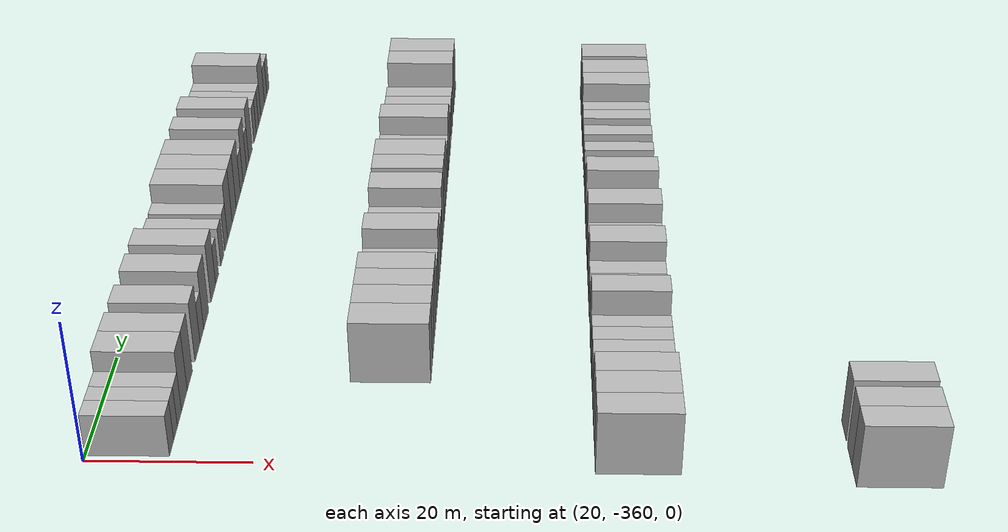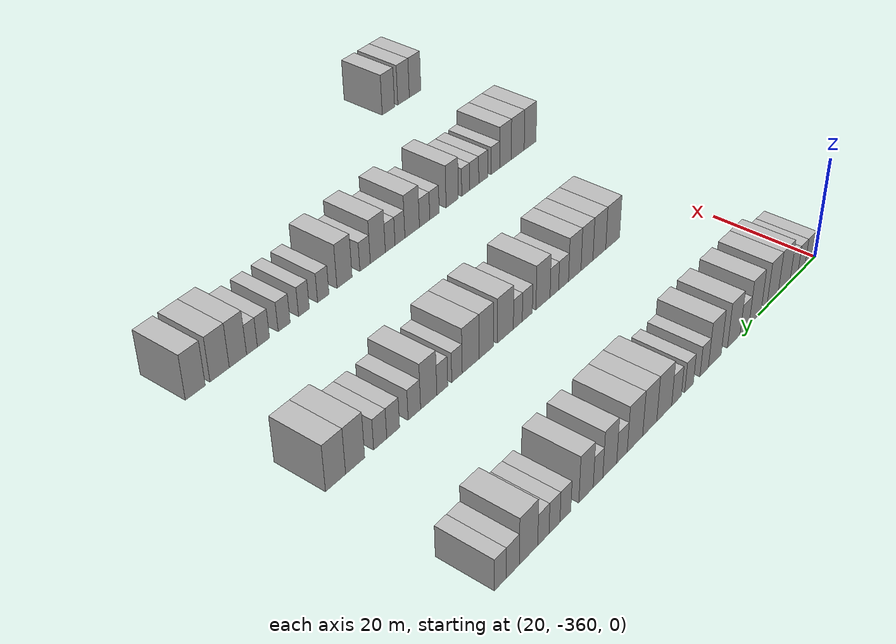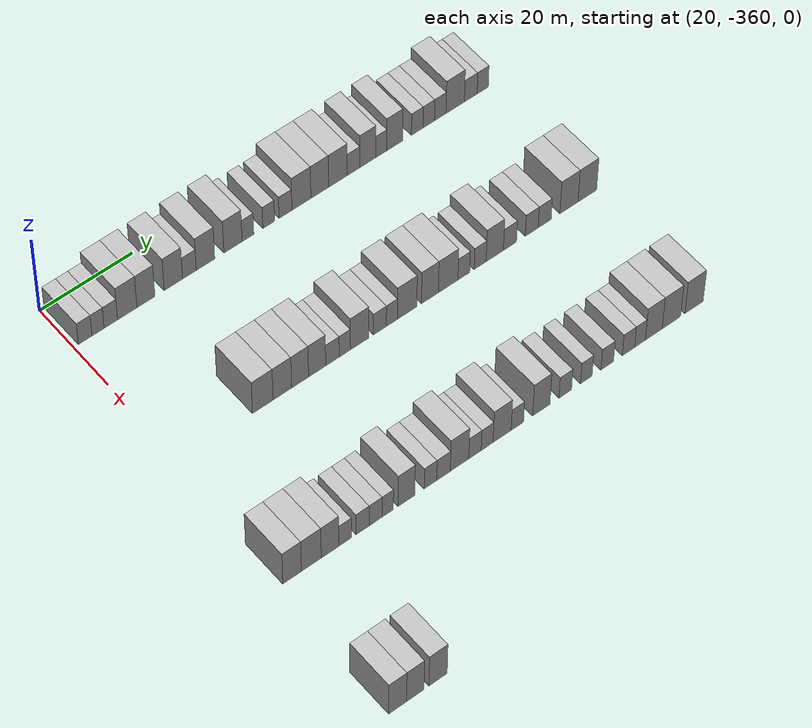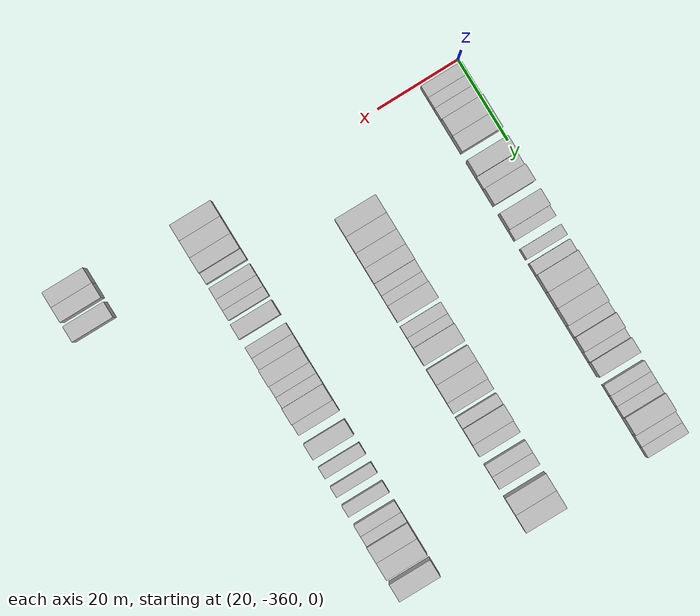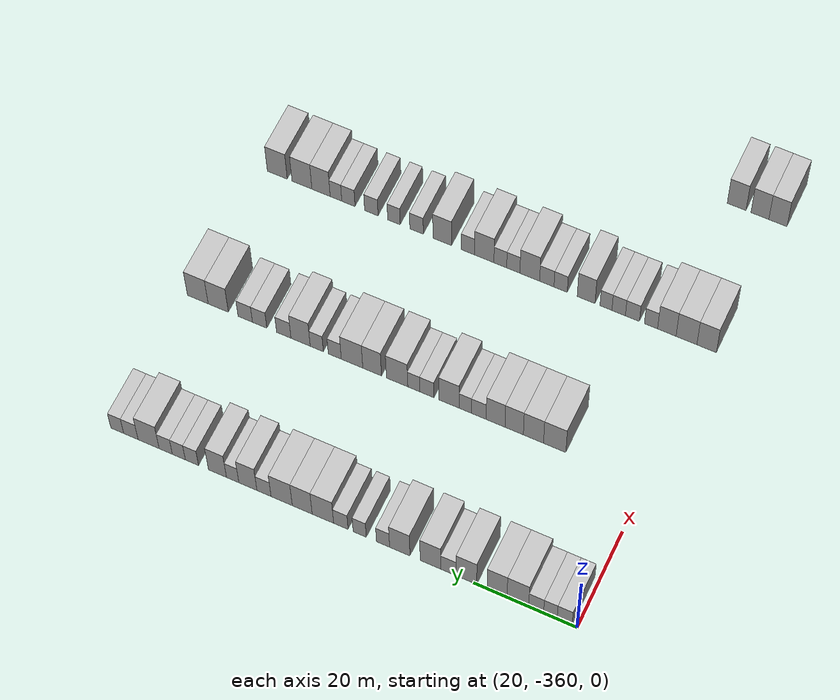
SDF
<sdf version="1.6">
 <world name="default">
  <model name="building_25">
   <static>1</static>
   <pose>25.0000 -357.5511 0 0.000000 0.000000 0.000000</pose>
   <link name="link">
    <pose>0 0 3.00 0 0 0</pose>
    <collision name="collision"><geometry><box><size>10.0000 2.8805 6.0000</size></box></geometry></collision>
    <visual name="visual">
     <cast_shadows>0</cast_shadows>
     <geometry><box><size>10.0000 2.8805 6.0000</size></box></geometry>
     <material>
      <script>
       <uri>model://HANNAS_wall/materials/scripts</uri>
       <uri>model://HANNAS_wall/materials/textures</uri>
       <name>vrc/HANNAS_wall</name>
      </script>
     </material>
    </visual>
   </link>
  </model>
  <model name="building_26">
   <static>1</static>
   <pose>25.0000 -354.8168 0 0.000000 0.000000 0.000000</pose>
   <link name="link">
    <pose>0 0 3.00 0 0 0</pose>
    <collision name="collision"><geometry><box><size>10.0000 2.5881 6.0000</size></box></geometry></collision>
    <visual name="visual">
     <cast_shadows>0</cast_shadows>
     <geometry><box><size>10.0000 2.5881 6.0000</size></box></geometry>
     <material>
      <script>
       <uri>model://HANNAS_wall/materials/scripts</uri>
       <uri>model://HANNAS_wall/materials/textures</uri>
       <name>vrc/HANNAS_wall</name>
      </script>
     </material>
    </visual>
   </link>
  </model>
  <model name="building_27">
   <static>1</static>
   <pose>25.0000 -352.0899 0 0.000000 0.000000 0.000000</pose>
   <link name="link">
    <pose>0 0 3.00 0 0 0</pose>
    <collision name="collision"><geometry><box><size>10.0000 2.8656 6.0000</size></box></geometry></collision>
    <visual name="visual">
     <cast_shadows>0</cast_shadows>
     <geometry><box><size>10.0000 2.8656 6.0000</size></box></geometry>
     <material>
      <script>
       <uri>model://HANNAS_wall/materials/scripts</uri>
       <uri>model://HANNAS_wall/materials/textures</uri>
       <name>vrc/HANNAS_wall</name>
      </script>
     </material>
    </visual>
   </link>
  </model>
  <model name="building_28">
   <static>1</static>
   <pose>25.0000 -348.5748 0 0.000000 0.000000 0.000000</pose>
   <link name="link">
    <pose>0 0 4.50 0 0 0</pose>
    <collision name="collision"><geometry><box><size>10.0000 4.1646 9.0000</size></box></geometry></collision>
    <visual name="visual">
     <cast_shadows>0</cast_shadows>
     <geometry><box><size>10.0000 4.1646 9.0000</size></box></geometry>
     <material>
      <script>
       <uri>model://HANNAS_wall/materials/scripts</uri>
       <uri>model://HANNAS_wall/materials/textures</uri>
       <name>vrc/HANNAS_wall</name>
      </script>
     </material>
    </visual>
   </link>
  </model>
  <model name="building_29">
   <static>1</static>
   <pose>25.0000 -344.5619 0 0.000000 0.000000 0.000000</pose>
   <link name="link">
    <pose>0 0 4.50 0 0 0</pose>
    <collision name="collision"><geometry><box><size>10.0000 3.8612 9.0000</size></box></geometry></collision>
    <visual name="visual">
     <cast_shadows>0</cast_shadows>
     <geometry><box><size>10.0000 3.8612 9.0000</size></box></geometry>
     <material>
      <script>
       <uri>model://HANNAS_wall/materials/scripts</uri>
       <uri>model://HANNAS_wall/materials/textures</uri>
       <name>vrc/HANNAS_wall</name>
      </script>
     </material>
    </visual>
   </link>
  </model>
  <model name="building_30">
   <static>1</static>
   <pose>25.0000 -338.6396 0 0.000000 0.000000 0.000000</pose>
   <link name="link">
    <pose>0 0 4.50 0 0 0</pose>
    <collision name="collision"><geometry><box><size>10.0000 3.9833 9.0000</size></box></geometry></collision>
    <visual name="visual">
     <cast_shadows>0</cast_shadows>
     <geometry><box><size>10.0000 3.9833 9.0000</size></box></geometry>
     <material>
      <script>
       <uri>model://HANNAS_wall/materials/scripts</uri>
       <uri>model://HANNAS_wall/materials/textures</uri>
       <name>vrc/HANNAS_wall</name>
      </script>
     </material>
    </visual>
   </link>
  </model>
  <model name="building_31">
   <static>1</static>
   <pose>25.0000 -335.1630 0 0.000000 0.000000 0.000000</pose>
   <link name="link">
    <pose>0 0 3.00 0 0 0</pose>
    <collision name="collision"><geometry><box><size>10.0000 2.9698 6.0000</size></box></geometry></collision>
    <visual name="visual">
     <cast_shadows>0</cast_shadows>
     <geometry><box><size>10.0000 2.9698 6.0000</size></box></geometry>
     <material>
      <script>
       <uri>model://HANNAS_wall/materials/scripts</uri>
       <uri>model://HANNAS_wall/materials/textures</uri>
       <name>vrc/HANNAS_wall</name>
      </script>
     </material>
    </visual>
   </link>
  </model>
  <model name="building_32">
   <static>1</static>
   <pose>25.0000 -331.6582 0 0.000000 0.000000 0.000000</pose>
   <link name="link">
    <pose>0 0 4.50 0 0 0</pose>
    <collision name="collision"><geometry><box><size>10.0000 4.0399 9.0000</size></box></geometry></collision>
    <visual name="visual">
     <cast_shadows>0</cast_shadows>
     <geometry><box><size>10.0000 4.0399 9.0000</size></box></geometry>
     <material>
      <script>
       <uri>model://HANNAS_wall/materials/scripts</uri>
       <uri>model://HANNAS_wall/materials/textures</uri>
       <name>vrc/HANNAS_wall</name>
      </script>
     </material>
    </visual>
   </link>
  </model>
  <model name="building_33">
   <static>1</static>
   <pose>25.0000 -325.6373 0 0.000000 0.000000 0.000000</pose>
   <link name="link">
    <pose>0 0 4.50 0 0 0</pose>
    <collision name="collision"><geometry><box><size>10.0000 4.0019 9.0000</size></box></geometry></collision>
    <visual name="visual">
     <cast_shadows>0</cast_shadows>
     <geometry><box><size>10.0000 4.0019 9.0000</size></box></geometry>
     <material>
      <script>
       <uri>model://HANNAS_wall/materials/scripts</uri>
       <uri>model://HANNAS_wall/materials/textures</uri>
       <name>vrc/HANNAS_wall</name>
      </script>
     </material>
    </visual>
   </link>
  </model>
  <model name="building_34">
   <static>1</static>
   <pose>25.0000 -322.3451 0 0.000000 0.000000 0.000000</pose>
   <link name="link">
    <pose>0 0 3.00 0 0 0</pose>
    <collision name="collision"><geometry><box><size>10.0000 2.5824 6.0000</size></box></geometry></collision>
    <visual name="visual">
     <cast_shadows>0</cast_shadows>
     <geometry><box><size>10.0000 2.5824 6.0000</size></box></geometry>
     <material>
      <script>
       <uri>model://HANNAS_wall/materials/scripts</uri>
       <uri>model://HANNAS_wall/materials/textures</uri>
       <name>vrc/HANNAS_wall</name>
      </script>
     </material>
    </visual>
   </link>
  </model>
  <model name="building_35">
   <static>1</static>
   <pose>25.0000 -317.7563 0 0.000000 0.000000 0.000000</pose>
   <link name="link">
    <pose>0 0 3.00 0 0 0</pose>
    <collision name="collision"><geometry><box><size>10.0000 2.5953 6.0000</size></box></geometry></collision>
    <visual name="visual">
     <cast_shadows>0</cast_shadows>
     <geometry><box><size>10.0000 2.5953 6.0000</size></box></geometry>
     <material>
      <script>
       <uri>model://HANNAS_wall/materials/scripts</uri>
       <uri>model://HANNAS_wall/materials/textures</uri>
       <name>vrc/HANNAS_wall</name>
      </script>
     </material>
    </visual>
   </link>
  </model>
  <model name="building_36">
   <static>1</static>
   <pose>25.0000 -314.0332 0 0.000000 0.000000 0.000000</pose>
   <link name="link">
    <pose>0 0 3.00 0 0 0</pose>
    <collision name="collision"><geometry><box><size>10.0000 2.8508 6.0000</size></box></geometry></collision>
    <visual name="visual">
     <cast_shadows>0</cast_shadows>
     <geometry><box><size>10.0000 2.8508 6.0000</size></box></geometry>
     <material>
      <script>
       <uri>model://HANNAS_wall/materials/scripts</uri>
       <uri>model://HANNAS_wall/materials/textures</uri>
       <name>vrc/HANNAS_wall</name>
      </script>
     </material>
    </visual>
   </link>
  </model>
  <model name="building_37">
   <static>1</static>
   <pose>25.0000 -310.4805 0 0.000000 0.000000 0.000000</pose>
   <link name="link">
    <pose>0 0 4.50 0 0 0</pose>
    <collision name="collision"><geometry><box><size>10.0000 4.2546 9.0000</size></box></geometry></collision>
    <visual name="visual">
     <cast_shadows>0</cast_shadows>
     <geometry><box><size>10.0000 4.2546 9.0000</size></box></geometry>
     <material>
      <script>
       <uri>model://HANNAS_wall/materials/scripts</uri>
       <uri>model://HANNAS_wall/materials/textures</uri>
       <name>vrc/HANNAS_wall</name>
      </script>
     </material>
    </visual>
   </link>
  </model>
  <model name="building_38">
   <static>1</static>
   <pose>25.0000 -306.3795 0 0.000000 0.000000 0.000000</pose>
   <link name="link">
    <pose>0 0 4.50 0 0 0</pose>
    <collision name="collision"><geometry><box><size>10.0000 3.9473 9.0000</size></box></geometry></collision>
    <visual name="visual">
     <cast_shadows>0</cast_shadows>
     <geometry><box><size>10.0000 3.9473 9.0000</size></box></geometry>
     <material>
      <script>
       <uri>model://HANNAS_wall/materials/scripts</uri>
       <uri>model://HANNAS_wall/materials/textures</uri>
       <name>vrc/HANNAS_wall</name>
      </script>
     </material>
    </visual>
   </link>
  </model>
  <model name="building_39">
   <static>1</static>
   <pose>25.0000 -302.2905 0 0.000000 0.000000 0.000000</pose>
   <link name="link">
    <pose>0 0 4.50 0 0 0</pose>
    <collision name="collision"><geometry><box><size>10.0000 4.2308 9.0000</size></box></geometry></collision>
    <visual name="visual">
     <cast_shadows>0</cast_shadows>
     <geometry><box><size>10.0000 4.2308 9.0000</size></box></geometry>
     <material>
      <script>
       <uri>model://HANNAS_wall/materials/scripts</uri>
       <uri>model://HANNAS_wall/materials/textures</uri>
       <name>vrc/HANNAS_wall</name>
      </script>
     </material>
    </visual>
   </link>
  </model>
  <model name="building_40">
   <static>1</static>
   <pose>25.0000 -298.7629 0 0.000000 0.000000 0.000000</pose>
   <link name="link">
    <pose>0 0 3.00 0 0 0</pose>
    <collision name="collision"><geometry><box><size>10.0000 2.8245 6.0000</size></box></geometry></collision>
    <visual name="visual">
     <cast_shadows>0</cast_shadows>
     <geometry><box><size>10.0000 2.8245 6.0000</size></box></geometry>
     <material>
      <script>
       <uri>model://HANNAS_wall/materials/scripts</uri>
       <uri>model://HANNAS_wall/materials/textures</uri>
       <name>vrc/HANNAS_wall</name>
      </script>
     </material>
    </visual>
   </link>
  </model>
  <model name="building_41">
   <static>1</static>
   <pose>25.0000 -295.5331 0 0.000000 0.000000 0.000000</pose>
   <link name="link">
    <pose>0 0 4.50 0 0 0</pose>
    <collision name="collision"><geometry><box><size>10.0000 3.6350 9.0000</size></box></geometry></collision>
    <visual name="visual">
     <cast_shadows>0</cast_shadows>
     <geometry><box><size>10.0000 3.6350 9.0000</size></box></geometry>
     <material>
      <script>
       <uri>model://HANNAS_wall/materials/scripts</uri>
       <uri>model://HANNAS_wall/materials/textures</uri>
       <name>vrc/HANNAS_wall</name>
      </script>
     </material>
    </visual>
   </link>
  </model>
  <model name="building_42">
   <static>1</static>
   <pose>25.0000 -292.4759 0 0.000000 0.000000 0.000000</pose>
   <link name="link">
    <pose>0 0 3.00 0 0 0</pose>
    <collision name="collision"><geometry><box><size>10.0000 2.4794 6.0000</size></box></geometry></collision>
    <visual name="visual">
     <cast_shadows>0</cast_shadows>
     <geometry><box><size>10.0000 2.4794 6.0000</size></box></geometry>
     <material>
      <script>
       <uri>model://HANNAS_wall/materials/scripts</uri>
       <uri>model://HANNAS_wall/materials/textures</uri>
       <name>vrc/HANNAS_wall</name>
      </script>
     </material>
    </visual>
   </link>
  </model>
  <model name="building_43">
   <static>1</static>
   <pose>25.0000 -289.4240 0 0.000000 0.000000 0.000000</pose>
   <link name="link">
    <pose>0 0 4.50 0 0 0</pose>
    <collision name="collision"><geometry><box><size>10.0000 3.6244 9.0000</size></box></geometry></collision>
    <visual name="visual">
     <cast_shadows>0</cast_shadows>
     <geometry><box><size>10.0000 3.6244 9.0000</size></box></geometry>
     <material>
      <script>
       <uri>model://HANNAS_wall/materials/scripts</uri>
       <uri>model://HANNAS_wall/materials/textures</uri>
       <name>vrc/HANNAS_wall</name>
      </script>
     </material>
    </visual>
   </link>
  </model>
  <model name="building_44">
   <static>1</static>
   <pose>25.0000 -284.2788 0 0.000000 0.000000 0.000000</pose>
   <link name="link">
    <pose>0 0 3.00 0 0 0</pose>
    <collision name="collision"><geometry><box><size>10.0000 2.6661 6.0000</size></box></geometry></collision>
    <visual name="visual">
     <cast_shadows>0</cast_shadows>
     <geometry><box><size>10.0000 2.6661 6.0000</size></box></geometry>
     <material>
      <script>
       <uri>model://HANNAS_wall/materials/scripts</uri>
       <uri>model://HANNAS_wall/materials/textures</uri>
       <name>vrc/HANNAS_wall</name>
      </script>
     </material>
    </visual>
   </link>
  </model>
  <model name="building_45">
   <static>1</static>
   <pose>25.0000 -281.6269 0 0.000000 0.000000 0.000000</pose>
   <link name="link">
    <pose>0 0 3.00 0 0 0</pose>
    <collision name="collision"><geometry><box><size>10.0000 2.6376 6.0000</size></box></geometry></collision>
    <visual name="visual">
     <cast_shadows>0</cast_shadows>
     <geometry><box><size>10.0000 2.6376 6.0000</size></box></geometry>
     <material>
      <script>
       <uri>model://HANNAS_wall/materials/scripts</uri>
       <uri>model://HANNAS_wall/materials/textures</uri>
       <name>vrc/HANNAS_wall</name>
      </script>
     </material>
    </visual>
   </link>
  </model>
  <model name="building_46">
   <static>1</static>
   <pose>25.0000 -278.9740 0 0.000000 0.000000 0.000000</pose>
   <link name="link">
    <pose>0 0 3.00 0 0 0</pose>
    <collision name="collision"><geometry><box><size>10.0000 2.6681 6.0000</size></box></geometry></collision>
    <visual name="visual">
     <cast_shadows>0</cast_shadows>
     <geometry><box><size>10.0000 2.6681 6.0000</size></box></geometry>
     <material>
      <script>
       <uri>model://HANNAS_wall/materials/scripts</uri>
       <uri>model://HANNAS_wall/materials/textures</uri>
       <name>vrc/HANNAS_wall</name>
      </script>
     </material>
    </visual>
   </link>
  </model>
  <model name="building_47">
   <static>1</static>
   <pose>25.0000 -275.4990 0 0.000000 0.000000 0.000000</pose>
   <link name="link">
    <pose>0 0 4.50 0 0 0</pose>
    <collision name="collision"><geometry><box><size>10.0000 4.2820 9.0000</size></box></geometry></collision>
    <visual name="visual">
     <cast_shadows>0</cast_shadows>
     <geometry><box><size>10.0000 4.2820 9.0000</size></box></geometry>
     <material>
      <script>
       <uri>model://HANNAS_wall/materials/scripts</uri>
       <uri>model://HANNAS_wall/materials/textures</uri>
       <name>vrc/HANNAS_wall</name>
      </script>
     </material>
    </visual>
   </link>
  </model>
  <model name="building_48">
   <static>1</static>
   <pose>25.0000 -271.8815 0 0.000000 0.000000 0.000000</pose>
   <link name="link">
    <pose>0 0 3.00 0 0 0</pose>
    <collision name="collision"><geometry><box><size>10.0000 2.9530 6.0000</size></box></geometry></collision>
    <visual name="visual">
     <cast_shadows>0</cast_shadows>
     <geometry><box><size>10.0000 2.9530 6.0000</size></box></geometry>
     <material>
      <script>
       <uri>model://HANNAS_wall/materials/scripts</uri>
       <uri>model://HANNAS_wall/materials/textures</uri>
       <name>vrc/HANNAS_wall</name>
      </script>
     </material>
    </visual>
   </link>
  </model>
  <model name="building_49">
   <static>1</static>
   <pose>25.0000 -269.1042 0 0.000000 0.000000 0.000000</pose>
   <link name="link">
    <pose>0 0 3.00 0 0 0</pose>
    <collision name="collision"><geometry><box><size>10.0000 2.6016 6.0000</size></box></geometry></collision>
    <visual name="visual">
     <cast_shadows>0</cast_shadows>
     <geometry><box><size>10.0000 2.6016 6.0000</size></box></geometry>
     <material>
      <script>
       <uri>model://HANNAS_wall/materials/scripts</uri>
       <uri>model://HANNAS_wall/materials/textures</uri>
       <name>vrc/HANNAS_wall</name>
      </script>
     </material>
    </visual>
   </link>
  </model>
  <model name="building_247">
   <static>1</static>
   <pose>55.0000 -342.3175 0 0.000000 0.000000 0.000000</pose>
   <link name="link">
    <pose>0 0 4.50 0 0 0</pose>
    <collision name="collision"><geometry><box><size>10.0000 4.4064 9.0000</size></box></geometry></collision>
    <visual name="visual">
     <cast_shadows>0</cast_shadows>
     <geometry><box><size>10.0000 4.4064 9.0000</size></box></geometry>
     <material>
      <script>
       <uri>model://HANNAS_wall/materials/scripts</uri>
       <uri>model://HANNAS_wall/materials/textures</uri>
       <name>vrc/HANNAS_wall</name>
      </script>
     </material>
    </visual>
   </link>
  </model>
  <model name="building_248">
   <static>1</static>
   <pose>55.0000 -338.1200 0 0.000000 0.000000 0.000000</pose>
   <link name="link">
    <pose>0 0 4.50 0 0 0</pose>
    <collision name="collision"><geometry><box><size>10.0000 3.9886 9.0000</size></box></geometry></collision>
    <visual name="visual">
     <cast_shadows>0</cast_shadows>
     <geometry><box><size>10.0000 3.9886 9.0000</size></box></geometry>
     <material>
      <script>
       <uri>model://HANNAS_wall/materials/scripts</uri>
       <uri>model://HANNAS_wall/materials/textures</uri>
       <name>vrc/HANNAS_wall</name>
      </script>
     </material>
    </visual>
   </link>
  </model>
  <model name="building_249">
   <static>1</static>
   <pose>55.0000 -334.3026 0 0.000000 0.000000 0.000000</pose>
   <link name="link">
    <pose>0 0 4.50 0 0 0</pose>
    <collision name="collision"><geometry><box><size>10.0000 3.6464 9.0000</size></box></geometry></collision>
    <visual name="visual">
     <cast_shadows>0</cast_shadows>
     <geometry><box><size>10.0000 3.6464 9.0000</size></box></geometry>
     <material>
      <script>
       <uri>model://HANNAS_wall/materials/scripts</uri>
       <uri>model://HANNAS_wall/materials/textures</uri>
       <name>vrc/HANNAS_wall</name>
      </script>
     </material>
    </visual>
   </link>
  </model>
  <model name="building_250">
   <static>1</static>
   <pose>55.0000 -330.6114 0 0.000000 0.000000 0.000000</pose>
   <link name="link">
    <pose>0 0 4.50 0 0 0</pose>
    <collision name="collision"><geometry><box><size>10.0000 3.7359 9.0000</size></box></geometry></collision>
    <visual name="visual">
     <cast_shadows>0</cast_shadows>
     <geometry><box><size>10.0000 3.7359 9.0000</size></box></geometry>
     <material>
      <script>
       <uri>model://HANNAS_wall/materials/scripts</uri>
       <uri>model://HANNAS_wall/materials/textures</uri>
       <name>vrc/HANNAS_wall</name>
      </script>
     </material>
    </visual>
   </link>
  </model>
  <model name="building_251">
   <static>1</static>
   <pose>55.0000 -327.2845 0 0.000000 0.000000 0.000000</pose>
   <link name="link">
    <pose>0 0 3.00 0 0 0</pose>
    <collision name="collision"><geometry><box><size>10.0000 2.9180 6.0000</size></box></geometry></collision>
    <visual name="visual">
     <cast_shadows>0</cast_shadows>
     <geometry><box><size>10.0000 2.9180 6.0000</size></box></geometry>
     <material>
      <script>
       <uri>model://HANNAS_wall/materials/scripts</uri>
       <uri>model://HANNAS_wall/materials/textures</uri>
       <name>vrc/HANNAS_wall</name>
      </script>
     </material>
    </visual>
   </link>
  </model>
  <model name="building_252">
   <static>1</static>
   <pose>55.0000 -324.5820 0 0.000000 0.000000 0.000000</pose>
   <link name="link">
    <pose>0 0 3.00 0 0 0</pose>
    <collision name="collision"><geometry><box><size>10.0000 2.4868 6.0000</size></box></geometry></collision>
    <visual name="visual">
     <cast_shadows>0</cast_shadows>
     <geometry><box><size>10.0000 2.4868 6.0000</size></box></geometry>
     <material>
      <script>
       <uri>model://HANNAS_wall/materials/scripts</uri>
       <uri>model://HANNAS_wall/materials/textures</uri>
       <name>vrc/HANNAS_wall</name>
      </script>
     </material>
    </visual>
   </link>
  </model>
  <model name="building_253">
   <static>1</static>
   <pose>55.0000 -321.3206 0 0.000000 0.000000 0.000000</pose>
   <link name="link">
    <pose>0 0 4.50 0 0 0</pose>
    <collision name="collision"><geometry><box><size>10.0000 4.0360 9.0000</size></box></geometry></collision>
    <visual name="visual">
     <cast_shadows>0</cast_shadows>
     <geometry><box><size>10.0000 4.0360 9.0000</size></box></geometry>
     <material>
      <script>
       <uri>model://HANNAS_wall/materials/scripts</uri>
       <uri>model://HANNAS_wall/materials/textures</uri>
       <name>vrc/HANNAS_wall</name>
      </script>
     </material>
    </visual>
   </link>
  </model>
  <model name="building_254">
   <static>1</static>
   <pose>55.0000 -316.8909 0 0.000000 0.000000 0.000000</pose>
   <link name="link">
    <pose>0 0 3.00 0 0 0</pose>
    <collision name="collision"><geometry><box><size>10.0000 2.8235 6.0000</size></box></geometry></collision>
    <visual name="visual">
     <cast_shadows>0</cast_shadows>
     <geometry><box><size>10.0000 2.8235 6.0000</size></box></geometry>
     <material>
      <script>
       <uri>model://HANNAS_wall/materials/scripts</uri>
       <uri>model://HANNAS_wall/materials/textures</uri>
       <name>vrc/HANNAS_wall</name>
      </script>
     </material>
    </visual>
   </link>
  </model>
  <model name="building_255">
   <static>1</static>
   <pose>55.0000 -314.2613 0 0.000000 0.000000 0.000000</pose>
   <link name="link">
    <pose>0 0 3.00 0 0 0</pose>
    <collision name="collision"><geometry><box><size>10.0000 2.4357 6.0000</size></box></geometry></collision>
    <visual name="visual">
     <cast_shadows>0</cast_shadows>
     <geometry><box><size>10.0000 2.4357 6.0000</size></box></geometry>
     <material>
      <script>
       <uri>model://HANNAS_wall/materials/scripts</uri>
       <uri>model://HANNAS_wall/materials/textures</uri>
       <name>vrc/HANNAS_wall</name>
      </script>
     </material>
    </visual>
   </link>
  </model>
  <model name="building_256">
   <static>1</static>
   <pose>55.0000 -310.8874 0 0.000000 0.000000 0.000000</pose>
   <link name="link">
    <pose>0 0 4.50 0 0 0</pose>
    <collision name="collision"><geometry><box><size>10.0000 4.3120 9.0000</size></box></geometry></collision>
    <visual name="visual">
     <cast_shadows>0</cast_shadows>
     <geometry><box><size>10.0000 4.3120 9.0000</size></box></geometry>
     <material>
      <script>
       <uri>model://HANNAS_wall/materials/scripts</uri>
       <uri>model://HANNAS_wall/materials/textures</uri>
       <name>vrc/HANNAS_wall</name>
      </script>
     </material>
    </visual>
   </link>
  </model>
  <model name="building_257">
   <static>1</static>
   <pose>55.0000 -305.8307 0 0.000000 0.000000 0.000000</pose>
   <link name="link">
    <pose>0 0 4.50 0 0 0</pose>
    <collision name="collision"><geometry><box><size>10.0000 3.8013 9.0000</size></box></geometry></collision>
    <visual name="visual">
     <cast_shadows>0</cast_shadows>
     <geometry><box><size>10.0000 3.8013 9.0000</size></box></geometry>
     <material>
      <script>
       <uri>model://HANNAS_wall/materials/scripts</uri>
       <uri>model://HANNAS_wall/materials/textures</uri>
       <name>vrc/HANNAS_wall</name>
      </script>
     </material>
    </visual>
   </link>
  </model>
  <model name="building_258">
   <static>1</static>
   <pose>55.0000 -301.7483 0 0.000000 0.000000 0.000000</pose>
   <link name="link">
    <pose>0 0 4.50 0 0 0</pose>
    <collision name="collision"><geometry><box><size>10.0000 4.3636 9.0000</size></box></geometry></collision>
    <visual name="visual">
     <cast_shadows>0</cast_shadows>
     <geometry><box><size>10.0000 4.3636 9.0000</size></box></geometry>
     <material>
      <script>
       <uri>model://HANNAS_wall/materials/scripts</uri>
       <uri>model://HANNAS_wall/materials/textures</uri>
       <name>vrc/HANNAS_wall</name>
      </script>
     </material>
    </visual>
   </link>
  </model>
  <model name="building_259">
   <static>1</static>
   <pose>55.0000 -298.2430 0 0.000000 0.000000 0.000000</pose>
   <link name="link">
    <pose>0 0 3.00 0 0 0</pose>
    <collision name="collision"><geometry><box><size>10.0000 2.6470 6.0000</size></box></geometry></collision>
    <visual name="visual">
     <cast_shadows>0</cast_shadows>
     <geometry><box><size>10.0000 2.6470 6.0000</size></box></geometry>
     <material>
      <script>
       <uri>model://HANNAS_wall/materials/scripts</uri>
       <uri>model://HANNAS_wall/materials/textures</uri>
       <name>vrc/HANNAS_wall</name>
      </script>
     </material>
    </visual>
   </link>
  </model>
  <model name="building_260">
   <static>1</static>
   <pose>55.0000 -294.5799 0 0.000000 0.000000 0.000000</pose>
   <link name="link">
    <pose>0 0 3.00 0 0 0</pose>
    <collision name="collision"><geometry><box><size>10.0000 2.6791 6.0000</size></box></geometry></collision>
    <visual name="visual">
     <cast_shadows>0</cast_shadows>
     <geometry><box><size>10.0000 2.6791 6.0000</size></box></geometry>
     <material>
      <script>
       <uri>model://HANNAS_wall/materials/scripts</uri>
       <uri>model://HANNAS_wall/materials/textures</uri>
       <name>vrc/HANNAS_wall</name>
      </script>
     </material>
    </visual>
   </link>
  </model>
  <model name="building_261">
   <static>1</static>
   <pose>55.0000 -291.2720 0 0.000000 0.000000 0.000000</pose>
   <link name="link">
    <pose>0 0 4.50 0 0 0</pose>
    <collision name="collision"><geometry><box><size>10.0000 3.9366 9.0000</size></box></geometry></collision>
    <visual name="visual">
     <cast_shadows>0</cast_shadows>
     <geometry><box><size>10.0000 3.9366 9.0000</size></box></geometry>
     <material>
      <script>
       <uri>model://HANNAS_wall/materials/scripts</uri>
       <uri>model://HANNAS_wall/materials/textures</uri>
       <name>vrc/HANNAS_wall</name>
      </script>
     </material>
    </visual>
   </link>
  </model>
  <model name="building_262">
   <static>1</static>
   <pose>55.0000 -287.8226 0 0.000000 0.000000 0.000000</pose>
   <link name="link">
    <pose>0 0 3.00 0 0 0</pose>
    <collision name="collision"><geometry><box><size>10.0000 2.9623 6.0000</size></box></geometry></collision>
    <visual name="visual">
     <cast_shadows>0</cast_shadows>
     <geometry><box><size>10.0000 2.9623 6.0000</size></box></geometry>
     <material>
      <script>
       <uri>model://HANNAS_wall/materials/scripts</uri>
       <uri>model://HANNAS_wall/materials/textures</uri>
       <name>vrc/HANNAS_wall</name>
      </script>
     </material>
    </visual>
   </link>
  </model>
  <model name="building_263">
   <static>1</static>
   <pose>55.0000 -282.8607 0 0.000000 0.000000 0.000000</pose>
   <link name="link">
    <pose>0 0 3.00 0 0 0</pose>
    <collision name="collision"><geometry><box><size>10.0000 2.9613 6.0000</size></box></geometry></collision>
    <visual name="visual">
     <cast_shadows>0</cast_shadows>
     <geometry><box><size>10.0000 2.9613 6.0000</size></box></geometry>
     <material>
      <script>
       <uri>model://HANNAS_wall/materials/scripts</uri>
       <uri>model://HANNAS_wall/materials/textures</uri>
       <name>vrc/HANNAS_wall</name>
      </script>
     </material>
    </visual>
   </link>
  </model>
  <model name="building_264">
   <static>1</static>
   <pose>55.0000 -279.8940 0 0.000000 0.000000 0.000000</pose>
   <link name="link">
    <pose>0 0 3.00 0 0 0</pose>
    <collision name="collision"><geometry><box><size>10.0000 2.9720 6.0000</size></box></geometry></collision>
    <visual name="visual">
     <cast_shadows>0</cast_shadows>
     <geometry><box><size>10.0000 2.9720 6.0000</size></box></geometry>
     <material>
      <script>
       <uri>model://HANNAS_wall/materials/scripts</uri>
       <uri>model://HANNAS_wall/materials/textures</uri>
       <name>vrc/HANNAS_wall</name>
      </script>
     </material>
    </visual>
   </link>
  </model>
  <model name="building_265">
   <static>1</static>
   <pose>55.0000 -274.3138 0 0.000000 0.000000 0.000000</pose>
   <link name="link">
    <pose>0 0 4.50 0 0 0</pose>
    <collision name="collision"><geometry><box><size>10.0000 4.1884 9.0000</size></box></geometry></collision>
    <visual name="visual">
     <cast_shadows>0</cast_shadows>
     <geometry><box><size>10.0000 4.1884 9.0000</size></box></geometry>
     <material>
      <script>
       <uri>model://HANNAS_wall/materials/scripts</uri>
       <uri>model://HANNAS_wall/materials/textures</uri>
       <name>vrc/HANNAS_wall</name>
      </script>
     </material>
    </visual>
   </link>
  </model>
  <model name="building_266">
   <static>1</static>
   <pose>55.0000 -270.0680 0 0.000000 0.000000 0.000000</pose>
   <link name="link">
    <pose>0 0 4.50 0 0 0</pose>
    <collision name="collision"><geometry><box><size>10.0000 4.3032 9.0000</size></box></geometry></collision>
    <visual name="visual">
     <cast_shadows>0</cast_shadows>
     <geometry><box><size>10.0000 4.3032 9.0000</size></box></geometry>
     <material>
      <script>
       <uri>model://HANNAS_wall/materials/scripts</uri>
       <uri>model://HANNAS_wall/materials/textures</uri>
       <name>vrc/HANNAS_wall</name>
      </script>
     </material>
    </visual>
   </link>
  </model>
  <model name="building_475">
   <static>1</static>
   <pose>85.0000 -359.4837 0 0.000000 0.000000 0.000000</pose>
   <link name="link">
    <pose>0 0 4.50 0 0 0</pose>
    <collision name="collision"><geometry><box><size>10.0000 3.8821 9.0000</size></box></geometry></collision>
    <visual name="visual">
     <cast_shadows>0</cast_shadows>
     <geometry><box><size>10.0000 3.8821 9.0000</size></box></geometry>
     <material>
      <script>
       <uri>model://HANNAS_wall/materials/scripts</uri>
       <uri>model://HANNAS_wall/materials/textures</uri>
       <name>vrc/HANNAS_wall</name>
      </script>
     </material>
    </visual>
   </link>
  </model>
  <model name="building_476">
   <static>1</static>
   <pose>85.0000 -355.4692 0 0.000000 0.000000 0.000000</pose>
   <link name="link">
    <pose>0 0 4.50 0 0 0</pose>
    <collision name="collision"><geometry><box><size>10.0000 4.1469 9.0000</size></box></geometry></collision>
    <visual name="visual">
     <cast_shadows>0</cast_shadows>
     <geometry><box><size>10.0000 4.1469 9.0000</size></box></geometry>
     <material>
      <script>
       <uri>model://HANNAS_wall/materials/scripts</uri>
       <uri>model://HANNAS_wall/materials/textures</uri>
       <name>vrc/HANNAS_wall</name>
      </script>
     </material>
    </visual>
   </link>
  </model>
  <model name="building_477">
   <static>1</static>
   <pose>85.0000 -351.5467 0 0.000000 0.000000 0.000000</pose>
   <link name="link">
    <pose>0 0 4.50 0 0 0</pose>
    <collision name="collision"><geometry><box><size>10.0000 3.6981 9.0000</size></box></geometry></collision>
    <visual name="visual">
     <cast_shadows>0</cast_shadows>
     <geometry><box><size>10.0000 3.6981 9.0000</size></box></geometry>
     <material>
      <script>
       <uri>model://HANNAS_wall/materials/scripts</uri>
       <uri>model://HANNAS_wall/materials/textures</uri>
       <name>vrc/HANNAS_wall</name>
      </script>
     </material>
    </visual>
   </link>
  </model>
  <model name="building_478">
   <static>1</static>
   <pose>85.0000 -348.3805 0 0.000000 0.000000 0.000000</pose>
   <link name="link">
    <pose>0 0 3.00 0 0 0</pose>
    <collision name="collision"><geometry><box><size>10.0000 2.6344 6.0000</size></box></geometry></collision>
    <visual name="visual">
     <cast_shadows>0</cast_shadows>
     <geometry><box><size>10.0000 2.6344 6.0000</size></box></geometry>
     <material>
      <script>
       <uri>model://HANNAS_wall/materials/scripts</uri>
       <uri>model://HANNAS_wall/materials/textures</uri>
       <name>vrc/HANNAS_wall</name>
      </script>
     </material>
    </visual>
   </link>
  </model>
  <model name="building_479">
   <static>1</static>
   <pose>85.0000 -344.6564 0 0.000000 0.000000 0.000000</pose>
   <link name="link">
    <pose>0 0 3.00 0 0 0</pose>
    <collision name="collision"><geometry><box><size>10.0000 2.8140 6.0000</size></box></geometry></collision>
    <visual name="visual">
     <cast_shadows>0</cast_shadows>
     <geometry><box><size>10.0000 2.8140 6.0000</size></box></geometry>
     <material>
      <script>
       <uri>model://HANNAS_wall/materials/scripts</uri>
       <uri>model://HANNAS_wall/materials/textures</uri>
       <name>vrc/HANNAS_wall</name>
      </script>
     </material>
    </visual>
   </link>
  </model>
  <model name="building_480">
   <static>1</static>
   <pose>85.0000 -341.8948 0 0.000000 0.000000 0.000000</pose>
   <link name="link">
    <pose>0 0 3.00 0 0 0</pose>
    <collision name="collision"><geometry><box><size>10.0000 2.7092 6.0000</size></box></geometry></collision>
    <visual name="visual">
     <cast_shadows>0</cast_shadows>
     <geometry><box><size>10.0000 2.7092 6.0000</size></box></geometry>
     <material>
      <script>
       <uri>model://HANNAS_wall/materials/scripts</uri>
       <uri>model://HANNAS_wall/materials/textures</uri>
       <name>vrc/HANNAS_wall</name>
      </script>
     </material>
    </visual>
   </link>
  </model>
  <model name="building_481">
   <static>1</static>
   <pose>85.0000 -339.3396 0 0.000000 0.000000 0.000000</pose>
   <link name="link">
    <pose>0 0 3.00 0 0 0</pose>
    <collision name="collision"><geometry><box><size>10.0000 2.4012 6.0000</size></box></geometry></collision>
    <visual name="visual">
     <cast_shadows>0</cast_shadows>
     <geometry><box><size>10.0000 2.4012 6.0000</size></box></geometry>
     <material>
      <script>
       <uri>model://HANNAS_wall/materials/scripts</uri>
       <uri>model://HANNAS_wall/materials/textures</uri>
       <name>vrc/HANNAS_wall</name>
      </script>
     </material>
    </visual>
   </link>
  </model>
  <model name="building_482">
   <static>1</static>
   <pose>85.0000 -335.3372 0 0.000000 0.000000 0.000000</pose>
   <link name="link">
    <pose>0 0 4.50 0 0 0</pose>
    <collision name="collision"><geometry><box><size>10.0000 3.6036 9.0000</size></box></geometry></collision>
    <visual name="visual">
     <cast_shadows>0</cast_shadows>
     <geometry><box><size>10.0000 3.6036 9.0000</size></box></geometry>
     <material>
      <script>
       <uri>model://HANNAS_wall/materials/scripts</uri>
       <uri>model://HANNAS_wall/materials/textures</uri>
       <name>vrc/HANNAS_wall</name>
      </script>
     </material>
    </visual>
   </link>
  </model>
  <model name="building_483">
   <static>1</static>
   <pose>85.0000 -330.1881 0 0.000000 0.000000 0.000000</pose>
   <link name="link">
    <pose>0 0 3.00 0 0 0</pose>
    <collision name="collision"><geometry><box><size>10.0000 2.6945 6.0000</size></box></geometry></collision>
    <visual name="visual">
     <cast_shadows>0</cast_shadows>
     <geometry><box><size>10.0000 2.6945 6.0000</size></box></geometry>
     <material>
      <script>
       <uri>model://HANNAS_wall/materials/scripts</uri>
       <uri>model://HANNAS_wall/materials/textures</uri>
       <name>vrc/HANNAS_wall</name>
      </script>
     </material>
    </visual>
   </link>
  </model>
  <model name="building_484">
   <static>1</static>
   <pose>85.0000 -327.3828 0 0.000000 0.000000 0.000000</pose>
   <link name="link">
    <pose>0 0 3.00 0 0 0</pose>
    <collision name="collision"><geometry><box><size>10.0000 2.9161 6.0000</size></box></geometry></collision>
    <visual name="visual">
     <cast_shadows>0</cast_shadows>
     <geometry><box><size>10.0000 2.9161 6.0000</size></box></geometry>
     <material>
      <script>
       <uri>model://HANNAS_wall/materials/scripts</uri>
       <uri>model://HANNAS_wall/materials/textures</uri>
       <name>vrc/HANNAS_wall</name>
      </script>
     </material>
    </visual>
   </link>
  </model>
  <model name="building_485">
   <static>1</static>
   <pose>85.0000 -323.9149 0 0.000000 0.000000 0.000000</pose>
   <link name="link">
    <pose>0 0 4.50 0 0 0</pose>
    <collision name="collision"><geometry><box><size>10.0000 4.0197 9.0000</size></box></geometry></collision>
    <visual name="visual">
     <cast_shadows>0</cast_shadows>
     <geometry><box><size>10.0000 4.0197 9.0000</size></box></geometry>
     <material>
      <script>
       <uri>model://HANNAS_wall/materials/scripts</uri>
       <uri>model://HANNAS_wall/materials/textures</uri>
       <name>vrc/HANNAS_wall</name>
      </script>
     </material>
    </visual>
   </link>
  </model>
  <model name="building_486">
   <static>1</static>
   <pose>85.0000 -320.5594 0 0.000000 0.000000 0.000000</pose>
   <link name="link">
    <pose>0 0 3.00 0 0 0</pose>
    <collision name="collision"><geometry><box><size>10.0000 2.6914 6.0000</size></box></geometry></collision>
    <visual name="visual">
     <cast_shadows>0</cast_shadows>
     <geometry><box><size>10.0000 2.6914 6.0000</size></box></geometry>
     <material>
      <script>
       <uri>model://HANNAS_wall/materials/scripts</uri>
       <uri>model://HANNAS_wall/materials/textures</uri>
       <name>vrc/HANNAS_wall</name>
      </script>
     </material>
    </visual>
   </link>
  </model>
  <model name="building_487">
   <static>1</static>
   <pose>85.0000 -317.9111 0 0.000000 0.000000 0.000000</pose>
   <link name="link">
    <pose>0 0 3.00 0 0 0</pose>
    <collision name="collision"><geometry><box><size>10.0000 2.6051 6.0000</size></box></geometry></collision>
    <visual name="visual">
     <cast_shadows>0</cast_shadows>
     <geometry><box><size>10.0000 2.6051 6.0000</size></box></geometry>
     <material>
      <script>
       <uri>model://HANNAS_wall/materials/scripts</uri>
       <uri>model://HANNAS_wall/materials/textures</uri>
       <name>vrc/HANNAS_wall</name>
      </script>
     </material>
    </visual>
   </link>
  </model>
  <model name="building_488">
   <static>1</static>
   <pose>85.0000 -314.6230 0 0.000000 0.000000 0.000000</pose>
   <link name="link">
    <pose>0 0 4.50 0 0 0</pose>
    <collision name="collision"><geometry><box><size>10.0000 3.9713 9.0000</size></box></geometry></collision>
    <visual name="visual">
     <cast_shadows>0</cast_shadows>
     <geometry><box><size>10.0000 3.9713 9.0000</size></box></geometry>
     <material>
      <script>
       <uri>model://HANNAS_wall/materials/scripts</uri>
       <uri>model://HANNAS_wall/materials/textures</uri>
       <name>vrc/HANNAS_wall</name>
      </script>
     </material>
    </visual>
   </link>
  </model>
  <model name="building_489">
   <static>1</static>
   <pose>85.0000 -311.2786 0 0.000000 0.000000 0.000000</pose>
   <link name="link">
    <pose>0 0 3.00 0 0 0</pose>
    <collision name="collision"><geometry><box><size>10.0000 2.7174 6.0000</size></box></geometry></collision>
    <visual name="visual">
     <cast_shadows>0</cast_shadows>
     <geometry><box><size>10.0000 2.7174 6.0000</size></box></geometry>
     <material>
      <script>
       <uri>model://HANNAS_wall/materials/scripts</uri>
       <uri>model://HANNAS_wall/materials/textures</uri>
       <name>vrc/HANNAS_wall</name>
      </script>
     </material>
    </visual>
   </link>
  </model>
  <model name="building_490">
   <static>1</static>
   <pose>85.0000 -306.0055 0 0.000000 0.000000 0.000000</pose>
   <link name="link">
    <pose>0 0 4.50 0 0 0</pose>
    <collision name="collision"><geometry><box><size>10.0000 3.8288 9.0000</size></box></geometry></collision>
    <visual name="visual">
     <cast_shadows>0</cast_shadows>
     <geometry><box><size>10.0000 3.8288 9.0000</size></box></geometry>
     <material>
      <script>
       <uri>model://HANNAS_wall/materials/scripts</uri>
       <uri>model://HANNAS_wall/materials/textures</uri>
       <name>vrc/HANNAS_wall</name>
      </script>
     </material>
    </visual>
   </link>
  </model>
  <model name="building_491">
   <static>1</static>
   <pose>85.0000 -300.6921 0 0.000000 0.000000 0.000000</pose>
   <link name="link">
    <pose>0 0 3.00 0 0 0</pose>
    <collision name="collision"><geometry><box><size>10.0000 2.7982 6.0000</size></box></geometry></collision>
    <visual name="visual">
     <cast_shadows>0</cast_shadows>
     <geometry><box><size>10.0000 2.7982 6.0000</size></box></geometry>
     <material>
      <script>
       <uri>model://HANNAS_wall/materials/scripts</uri>
       <uri>model://HANNAS_wall/materials/textures</uri>
       <name>vrc/HANNAS_wall</name>
      </script>
     </material>
    </visual>
   </link>
  </model>
  <model name="building_492">
   <static>1</static>
   <pose>85.0000 -295.9974 0 0.000000 0.000000 0.000000</pose>
   <link name="link">
    <pose>0 0 3.00 0 0 0</pose>
    <collision name="collision"><geometry><box><size>10.0000 2.5912 6.0000</size></box></geometry></collision>
    <visual name="visual">
     <cast_shadows>0</cast_shadows>
     <geometry><box><size>10.0000 2.5912 6.0000</size></box></geometry>
     <material>
      <script>
       <uri>model://HANNAS_wall/materials/scripts</uri>
       <uri>model://HANNAS_wall/materials/textures</uri>
       <name>vrc/HANNAS_wall</name>
      </script>
     </material>
    </visual>
   </link>
  </model>
  <model name="building_493">
   <static>1</static>
   <pose>85.0000 -291.2978 0 0.000000 0.000000 0.000000</pose>
   <link name="link">
    <pose>0 0 3.00 0 0 0</pose>
    <collision name="collision"><geometry><box><size>10.0000 2.8080 6.0000</size></box></geometry></collision>
    <visual name="visual">
     <cast_shadows>0</cast_shadows>
     <geometry><box><size>10.0000 2.8080 6.0000</size></box></geometry>
     <material>
      <script>
       <uri>model://HANNAS_wall/materials/scripts</uri>
       <uri>model://HANNAS_wall/materials/textures</uri>
       <name>vrc/HANNAS_wall</name>
      </script>
     </material>
    </visual>
   </link>
  </model>
  <model name="building_494">
   <static>1</static>
   <pose>85.0000 -286.5032 0 0.000000 0.000000 0.000000</pose>
   <link name="link">
    <pose>0 0 3.00 0 0 0</pose>
    <collision name="collision"><geometry><box><size>10.0000 2.7811 6.0000</size></box></geometry></collision>
    <visual name="visual">
     <cast_shadows>0</cast_shadows>
     <geometry><box><size>10.0000 2.7811 6.0000</size></box></geometry>
     <material>
      <script>
       <uri>model://HANNAS_wall/materials/scripts</uri>
       <uri>model://HANNAS_wall/materials/textures</uri>
       <name>vrc/HANNAS_wall</name>
      </script>
     </material>
    </visual>
   </link>
  </model>
  <model name="building_495">
   <static>1</static>
   <pose>85.0000 -283.8998 0 0.000000 0.000000 0.000000</pose>
   <link name="link">
    <pose>0 0 3.00 0 0 0</pose>
    <collision name="collision"><geometry><box><size>10.0000 2.4257 6.0000</size></box></geometry></collision>
    <visual name="visual">
     <cast_shadows>0</cast_shadows>
     <geometry><box><size>10.0000 2.4257 6.0000</size></box></geometry>
     <material>
      <script>
       <uri>model://HANNAS_wall/materials/scripts</uri>
       <uri>model://HANNAS_wall/materials/textures</uri>
       <name>vrc/HANNAS_wall</name>
      </script>
     </material>
    </visual>
   </link>
  </model>
  <model name="building_496">
   <static>1</static>
   <pose>85.0000 -280.7714 0 0.000000 0.000000 0.000000</pose>
   <link name="link">
    <pose>0 0 4.50 0 0 0</pose>
    <collision name="collision"><geometry><box><size>10.0000 3.8310 9.0000</size></box></geometry></collision>
    <visual name="visual">
     <cast_shadows>0</cast_shadows>
     <geometry><box><size>10.0000 3.8310 9.0000</size></box></geometry>
     <material>
      <script>
       <uri>model://HANNAS_wall/materials/scripts</uri>
       <uri>model://HANNAS_wall/materials/textures</uri>
       <name>vrc/HANNAS_wall</name>
      </script>
     </material>
    </visual>
   </link>
  </model>
  <model name="building_497">
   <static>1</static>
   <pose>85.0000 -276.7625 0 0.000000 0.000000 0.000000</pose>
   <link name="link">
    <pose>0 0 4.50 0 0 0</pose>
    <collision name="collision"><geometry><box><size>10.0000 4.1868 9.0000</size></box></geometry></collision>
    <visual name="visual">
     <cast_shadows>0</cast_shadows>
     <geometry><box><size>10.0000 4.1868 9.0000</size></box></geometry>
     <material>
      <script>
       <uri>model://HANNAS_wall/materials/scripts</uri>
       <uri>model://HANNAS_wall/materials/textures</uri>
       <name>vrc/HANNAS_wall</name>
      </script>
     </material>
    </visual>
   </link>
  </model>
  <model name="building_498">
   <static>1</static>
   <pose>85.0000 -271.5706 0 0.000000 0.000000 0.000000</pose>
   <link name="link">
    <pose>0 0 4.50 0 0 0</pose>
    <collision name="collision"><geometry><box><size>10.0000 4.1968 9.0000</size></box></geometry></collision>
    <visual name="visual">
     <cast_shadows>0</cast_shadows>
     <geometry><box><size>10.0000 4.1968 9.0000</size></box></geometry>
     <material>
      <script>
       <uri>model://HANNAS_wall/materials/scripts</uri>
       <uri>model://HANNAS_wall/materials/textures</uri>
       <name>vrc/HANNAS_wall</name>
      </script>
     </material>
    </visual>
   </link>
  </model>
  <model name="building_710">
   <static>1</static>
   <pose>115.0000 -361.4548 0 0.000000 0.000000 0.000000</pose>
   <link name="link">
    <pose>0 0 4.50 0 0 0</pose>
    <collision name="collision"><geometry><box><size>10.0000 3.6770 9.0000</size></box></geometry></collision>
    <visual name="visual">
     <cast_shadows>0</cast_shadows>
     <geometry><box><size>10.0000 3.6770 9.0000</size></box></geometry>
     <material>
      <script>
       <uri>model://HANNAS_wall/materials/scripts</uri>
       <uri>model://HANNAS_wall/materials/textures</uri>
       <name>vrc/HANNAS_wall</name>
      </script>
     </material>
    </visual>
   </link>
  </model>
  <model name="building_711">
   <static>1</static>
   <pose>115.0000 -357.8092 0 0.000000 0.000000 0.000000</pose>
   <link name="link">
    <pose>0 0 4.50 0 0 0</pose>
    <collision name="collision"><geometry><box><size>10.0000 3.6142 9.0000</size></box></geometry></collision>
    <visual name="visual">
     <cast_shadows>0</cast_shadows>
     <geometry><box><size>10.0000 3.6142 9.0000</size></box></geometry>
     <material>
      <script>
       <uri>model://HANNAS_wall/materials/scripts</uri>
       <uri>model://HANNAS_wall/materials/textures</uri>
       <name>vrc/HANNAS_wall</name>
      </script>
     </material>
    </visual>
   </link>
  </model>
  <model name="building_712">
   <static>1</static>
   <pose>115.0000 -353.0992 0 0.000000 0.000000 0.000000</pose>
   <link name="link">
    <pose>0 0 4.50 0 0 0</pose>
    <collision name="collision"><geometry><box><size>10.0000 3.8060 9.0000</size></box></geometry></collision>
    <visual name="visual">
     <cast_shadows>0</cast_shadows>
     <geometry><box><size>10.0000 3.8060 9.0000</size></box></geometry>
     <material>
      <script>
       <uri>model://HANNAS_wall/materials/scripts</uri>
       <uri>model://HANNAS_wall/materials/textures</uri>
       <name>vrc/HANNAS_wall</name>
      </script>
     </material>
    </visual>
   </link>
  </model>
 </world>
</sdf>
